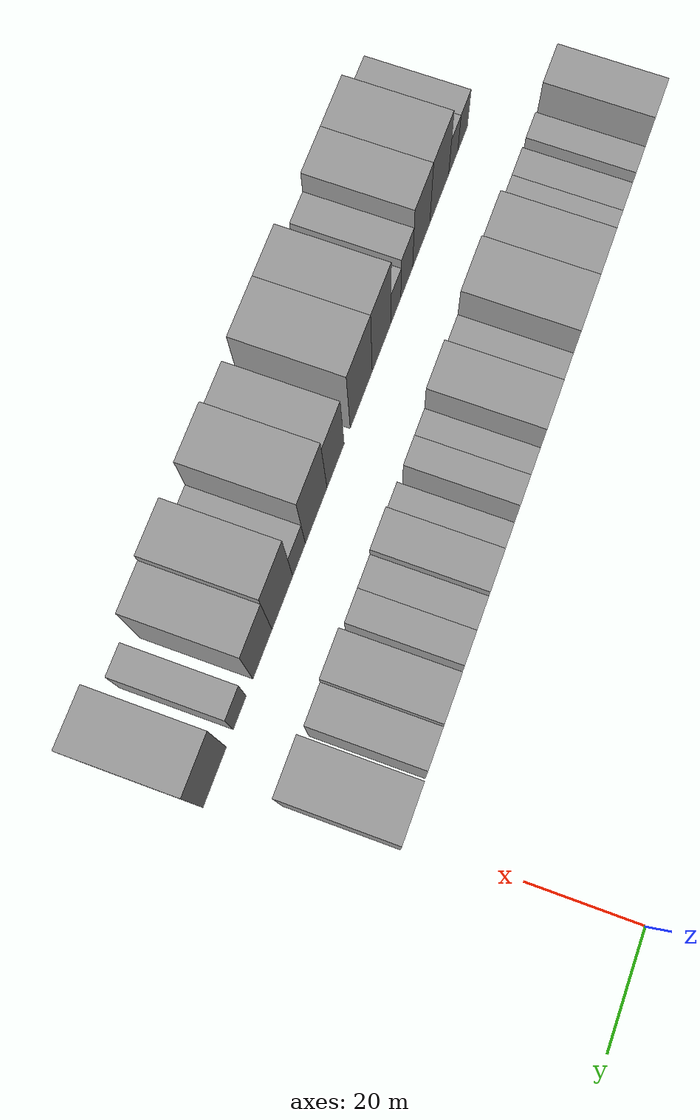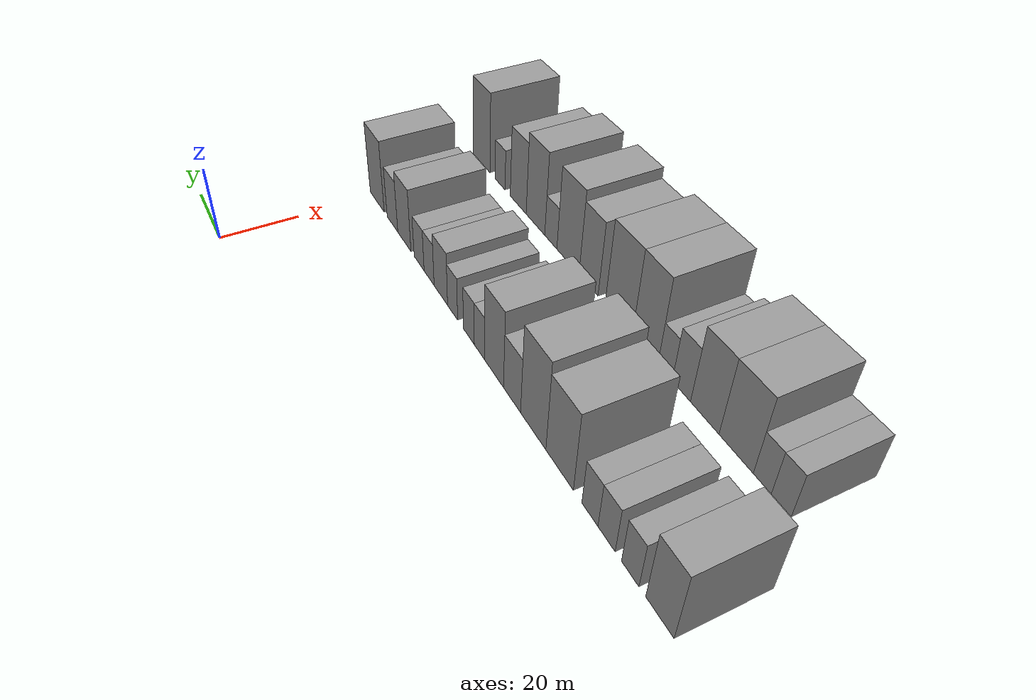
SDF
<sdf version="1.6">
 <world name="default">
  <model name="building_18">
   <static>1</static>
   <pose>50.0000 -129.6286 0 0.000000 0.000000 0.000000</pose>
   <link name="link">
    <pose>0 0 9.00 0 0 0</pose>
    <collision name="collision"><geometry><box><size>20.0000 8.0599 18.0000</size></box></geometry></collision>
    <visual name="visual">
     <cast_shadows>0</cast_shadows>
     <geometry><box><size>20.0000 8.0599 18.0000</size></box></geometry>
     <material>
      <script>
       <uri>model://grey_wall/materials/scripts</uri>
       <uri>model://grey_wall/materials/textures</uri>
       <name>vrc/grey_wall</name>
      </script>
     </material>
    </visual>
   </link>
  </model>
  <model name="building_19">
   <static>1</static>
   <pose>50.0000 -120.9239 0 0.000000 0.000000 0.000000</pose>
   <link name="link">
    <pose>0 0 6.00 0 0 0</pose>
    <collision name="collision"><geometry><box><size>20.0000 5.3495 12.0000</size></box></geometry></collision>
    <visual name="visual">
     <cast_shadows>0</cast_shadows>
     <geometry><box><size>20.0000 5.3495 12.0000</size></box></geometry>
     <material>
      <script>
       <uri>model://grey_wall/materials/scripts</uri>
       <uri>model://grey_wall/materials/textures</uri>
       <name>vrc/grey_wall</name>
      </script>
     </material>
    </visual>
   </link>
  </model>
  <model name="building_20">
   <static>1</static>
   <pose>50.0000 -113.4339 0 0.000000 0.000000 0.000000</pose>
   <link name="link">
    <pose>0 0 6.00 0 0 0</pose>
    <collision name="collision"><geometry><box><size>20.0000 5.6305 12.0000</size></box></geometry></collision>
    <visual name="visual">
     <cast_shadows>0</cast_shadows>
     <geometry><box><size>20.0000 5.6305 12.0000</size></box></geometry>
     <material>
      <script>
       <uri>model://grey_wall/materials/scripts</uri>
       <uri>model://grey_wall/materials/textures</uri>
       <name>vrc/grey_wall</name>
      </script>
     </material>
    </visual>
   </link>
  </model>
  <model name="building_21">
   <static>1</static>
   <pose>50.0000 -107.8615 0 0.000000 0.000000 0.000000</pose>
   <link name="link">
    <pose>0 0 6.00 0 0 0</pose>
    <collision name="collision"><geometry><box><size>20.0000 5.5142 12.0000</size></box></geometry></collision>
    <visual name="visual">
     <cast_shadows>0</cast_shadows>
     <geometry><box><size>20.0000 5.5142 12.0000</size></box></geometry>
     <material>
      <script>
       <uri>model://grey_wall/materials/scripts</uri>
       <uri>model://grey_wall/materials/textures</uri>
       <name>vrc/grey_wall</name>
      </script>
     </material>
    </visual>
   </link>
  </model>
  <model name="building_22">
   <static>1</static>
   <pose>50.0000 -96.9569 0 0.000000 0.000000 0.000000</pose>
   <link name="link">
    <pose>0 0 10.50 0 0 0</pose>
    <collision name="collision"><geometry><box><size>20.0000 10.2951 21.0000</size></box></geometry></collision>
    <visual name="visual">
     <cast_shadows>0</cast_shadows>
     <geometry><box><size>20.0000 10.2951 21.0000</size></box></geometry>
     <material>
      <script>
       <uri>model://grey_wall/materials/scripts</uri>
       <uri>model://grey_wall/materials/textures</uri>
       <name>vrc/grey_wall</name>
      </script>
     </material>
    </visual>
   </link>
  </model>
  <model name="building_23">
   <static>1</static>
   <pose>50.0000 -86.6608 0 0.000000 0.000000 0.000000</pose>
   <link name="link">
    <pose>0 0 12.00 0 0 0</pose>
    <collision name="collision"><geometry><box><size>20.0000 10.2970 24.0000</size></box></geometry></collision>
    <visual name="visual">
     <cast_shadows>0</cast_shadows>
     <geometry><box><size>20.0000 10.2970 24.0000</size></box></geometry>
     <material>
      <script>
       <uri>model://grey_wall/materials/scripts</uri>
       <uri>model://grey_wall/materials/textures</uri>
       <name>vrc/grey_wall</name>
      </script>
     </material>
    </visual>
   </link>
  </model>
  <model name="building_24">
   <static>1</static>
   <pose>50.0000 -77.8001 0 0.000000 0.000000 0.000000</pose>
   <link name="link">
    <pose>0 0 7.50 0 0 0</pose>
    <collision name="collision"><geometry><box><size>20.0000 7.4245 15.0000</size></box></geometry></collision>
    <visual name="visual">
     <cast_shadows>0</cast_shadows>
     <geometry><box><size>20.0000 7.4245 15.0000</size></box></geometry>
     <material>
      <script>
       <uri>model://grey_wall/materials/scripts</uri>
       <uri>model://grey_wall/materials/textures</uri>
       <name>vrc/grey_wall</name>
      </script>
     </material>
    </visual>
   </link>
  </model>
  <model name="building_25">
   <static>1</static>
   <pose>50.0000 -69.6956 0 0.000000 0.000000 0.000000</pose>
   <link name="link">
    <pose>0 0 10.50 0 0 0</pose>
    <collision name="collision"><geometry><box><size>20.0000 8.7845 21.0000</size></box></geometry></collision>
    <visual name="visual">
     <cast_shadows>0</cast_shadows>
     <geometry><box><size>20.0000 8.7845 21.0000</size></box></geometry>
     <material>
      <script>
       <uri>model://grey_wall/materials/scripts</uri>
       <uri>model://grey_wall/materials/textures</uri>
       <name>vrc/grey_wall</name>
      </script>
     </material>
    </visual>
   </link>
  </model>
  <model name="building_26">
   <static>1</static>
   <pose>50.0000 -62.8585 0 0.000000 0.000000 0.000000</pose>
   <link name="link">
    <pose>0 0 6.00 0 0 0</pose>
    <collision name="collision"><geometry><box><size>20.0000 4.8897 12.0000</size></box></geometry></collision>
    <visual name="visual">
     <cast_shadows>0</cast_shadows>
     <geometry><box><size>20.0000 4.8897 12.0000</size></box></geometry>
     <material>
      <script>
       <uri>model://grey_wall/materials/scripts</uri>
       <uri>model://grey_wall/materials/textures</uri>
       <name>vrc/grey_wall</name>
      </script>
     </material>
    </visual>
   </link>
  </model>
  <model name="building_27">
   <static>1</static>
   <pose>50.0000 -57.6630 0 0.000000 0.000000 0.000000</pose>
   <link name="link">
    <pose>0 0 6.00 0 0 0</pose>
    <collision name="collision"><geometry><box><size>20.0000 5.5013 12.0000</size></box></geometry></collision>
    <visual name="visual">
     <cast_shadows>0</cast_shadows>
     <geometry><box><size>20.0000 5.5013 12.0000</size></box></geometry>
     <material>
      <script>
       <uri>model://grey_wall/materials/scripts</uri>
       <uri>model://grey_wall/materials/textures</uri>
       <name>vrc/grey_wall</name>
      </script>
     </material>
    </visual>
   </link>
  </model>
  <model name="building_28">
   <static>1</static>
   <pose>50.0000 -49.2499 0 0.000000 0.000000 0.000000</pose>
   <link name="link">
    <pose>0 0 6.00 0 0 0</pose>
    <collision name="collision"><geometry><box><size>20.0000 5.3249 12.0000</size></box></geometry></collision>
    <visual name="visual">
     <cast_shadows>0</cast_shadows>
     <geometry><box><size>20.0000 5.3249 12.0000</size></box></geometry>
     <material>
      <script>
       <uri>model://grey_wall/materials/scripts</uri>
       <uri>model://grey_wall/materials/textures</uri>
       <name>vrc/grey_wall</name>
      </script>
     </material>
    </visual>
   </link>
  </model>
  <model name="building_29">
   <static>1</static>
   <pose>50.0000 -42.8600 0 0.000000 0.000000 0.000000</pose>
   <link name="link">
    <pose>0 0 7.50 0 0 0</pose>
    <collision name="collision"><geometry><box><size>20.0000 7.4549 15.0000</size></box></geometry></collision>
    <visual name="visual">
     <cast_shadows>0</cast_shadows>
     <geometry><box><size>20.0000 7.4549 15.0000</size></box></geometry>
     <material>
      <script>
       <uri>model://grey_wall/materials/scripts</uri>
       <uri>model://grey_wall/materials/textures</uri>
       <name>vrc/grey_wall</name>
      </script>
     </material>
    </visual>
   </link>
  </model>
  <model name="building_30">
   <static>1</static>
   <pose>50.0000 -36.2315 0 0.000000 0.000000 0.000000</pose>
   <link name="link">
    <pose>0 0 6.00 0 0 0</pose>
    <collision name="collision"><geometry><box><size>20.0000 5.8020 12.0000</size></box></geometry></collision>
    <visual name="visual">
     <cast_shadows>0</cast_shadows>
     <geometry><box><size>20.0000 5.8020 12.0000</size></box></geometry>
     <material>
      <script>
       <uri>model://grey_wall/materials/scripts</uri>
       <uri>model://grey_wall/materials/textures</uri>
       <name>vrc/grey_wall</name>
      </script>
     </material>
    </visual>
   </link>
  </model>
  <model name="building_31">
   <static>1</static>
   <pose>50.0000 -30.3427 0 0.000000 0.000000 0.000000</pose>
   <link name="link">
    <pose>0 0 6.00 0 0 0</pose>
    <collision name="collision"><geometry><box><size>20.0000 5.9757 12.0000</size></box></geometry></collision>
    <visual name="visual">
     <cast_shadows>0</cast_shadows>
     <geometry><box><size>20.0000 5.9757 12.0000</size></box></geometry>
     <material>
      <script>
       <uri>model://grey_wall/materials/scripts</uri>
       <uri>model://grey_wall/materials/textures</uri>
       <name>vrc/grey_wall</name>
      </script>
     </material>
    </visual>
   </link>
  </model>
  <model name="building_32">
   <static>1</static>
   <pose>50.0000 -21.1666 0 0.000000 0.000000 0.000000</pose>
   <link name="link">
    <pose>0 0 9.00 0 0 0</pose>
    <collision name="collision"><geometry><box><size>20.0000 8.3766 18.0000</size></box></geometry></collision>
    <visual name="visual">
     <cast_shadows>0</cast_shadows>
     <geometry><box><size>20.0000 8.3766 18.0000</size></box></geometry>
     <material>
      <script>
       <uri>model://grey_wall/materials/scripts</uri>
       <uri>model://grey_wall/materials/textures</uri>
       <name>vrc/grey_wall</name>
      </script>
     </material>
    </visual>
   </link>
  </model>
  <model name="building_33">
   <static>1</static>
   <pose>50.0000 -13.4240 0 0.000000 0.000000 0.000000</pose>
   <link name="link">
    <pose>0 0 7.50 0 0 0</pose>
    <collision name="collision"><geometry><box><size>20.0000 7.1086 15.0000</size></box></geometry></collision>
    <visual name="visual">
     <cast_shadows>0</cast_shadows>
     <geometry><box><size>20.0000 7.1086 15.0000</size></box></geometry>
     <material>
      <script>
       <uri>model://grey_wall/materials/scripts</uri>
       <uri>model://grey_wall/materials/textures</uri>
       <name>vrc/grey_wall</name>
      </script>
     </material>
    </visual>
   </link>
  </model>
  <model name="building_34">
   <static>1</static>
   <pose>50.0000 -2.9296 0 0.000000 0.000000 0.000000</pose>
   <link name="link">
    <pose>0 0 10.50 0 0 0</pose>
    <collision name="collision"><geometry><box><size>20.0000 9.8801 21.0000</size></box></geometry></collision>
    <visual name="visual">
     <cast_shadows>0</cast_shadows>
     <geometry><box><size>20.0000 9.8801 21.0000</size></box></geometry>
     <material>
      <script>
       <uri>model://grey_wall/materials/scripts</uri>
       <uri>model://grey_wall/materials/textures</uri>
       <name>vrc/grey_wall</name>
      </script>
     </material>
    </visual>
   </link>
  </model>
  <model name="building_81">
   <static>1</static>
   <pose>82.0000 -121.2935 0 0.000000 0.000000 0.000000</pose>
   <link name="link">
    <pose>0 0 6.00 0 0 0</pose>
    <collision name="collision"><geometry><box><size>20.0000 5.4174 12.0000</size></box></geometry></collision>
    <visual name="visual">
     <cast_shadows>0</cast_shadows>
     <geometry><box><size>20.0000 5.4174 12.0000</size></box></geometry>
     <material>
      <script>
       <uri>model://grey_wall/materials/scripts</uri>
       <uri>model://grey_wall/materials/textures</uri>
       <name>vrc/grey_wall</name>
      </script>
     </material>
    </visual>
   </link>
  </model>
  <model name="building_82">
   <static>1</static>
   <pose>82.0000 -116.0348 0 0.000000 0.000000 0.000000</pose>
   <link name="link">
    <pose>0 0 6.00 0 0 0</pose>
    <collision name="collision"><geometry><box><size>20.0000 5.1000 12.0000</size></box></geometry></collision>
    <visual name="visual">
     <cast_shadows>0</cast_shadows>
     <geometry><box><size>20.0000 5.1000 12.0000</size></box></geometry>
     <material>
      <script>
       <uri>model://grey_wall/materials/scripts</uri>
       <uri>model://grey_wall/materials/textures</uri>
       <name>vrc/grey_wall</name>
      </script>
     </material>
    </visual>
   </link>
  </model>
  <model name="building_83">
   <static>1</static>
   <pose>82.0000 -108.3214 0 0.000000 0.000000 0.000000</pose>
   <link name="link">
    <pose>0 0 10.50 0 0 0</pose>
    <collision name="collision"><geometry><box><size>20.0000 10.3269 21.0000</size></box></geometry></collision>
    <visual name="visual">
     <cast_shadows>0</cast_shadows>
     <geometry><box><size>20.0000 10.3269 21.0000</size></box></geometry>
     <material>
      <script>
       <uri>model://grey_wall/materials/scripts</uri>
       <uri>model://grey_wall/materials/textures</uri>
       <name>vrc/grey_wall</name>
      </script>
     </material>
    </visual>
   </link>
  </model>
  <model name="building_84">
   <static>1</static>
   <pose>82.0000 -98.5267 0 0.000000 0.000000 0.000000</pose>
   <link name="link">
    <pose>0 0 10.50 0 0 0</pose>
    <collision name="collision"><geometry><box><size>20.0000 9.2625 21.0000</size></box></geometry></collision>
    <visual name="visual">
     <cast_shadows>0</cast_shadows>
     <geometry><box><size>20.0000 9.2625 21.0000</size></box></geometry>
     <material>
      <script>
       <uri>model://grey_wall/materials/scripts</uri>
       <uri>model://grey_wall/materials/textures</uri>
       <name>vrc/grey_wall</name>
      </script>
     </material>
    </visual>
   </link>
  </model>
  <model name="building_85">
   <static>1</static>
   <pose>82.0000 -90.7465 0 0.000000 0.000000 0.000000</pose>
   <link name="link">
    <pose>0 0 7.50 0 0 0</pose>
    <collision name="collision"><geometry><box><size>20.0000 6.2978 15.0000</size></box></geometry></collision>
    <visual name="visual">
     <cast_shadows>0</cast_shadows>
     <geometry><box><size>20.0000 6.2978 15.0000</size></box></geometry>
     <material>
      <script>
       <uri>model://grey_wall/materials/scripts</uri>
       <uri>model://grey_wall/materials/textures</uri>
       <name>vrc/grey_wall</name>
      </script>
     </material>
    </visual>
   </link>
  </model>
  <model name="building_86">
   <static>1</static>
   <pose>82.0000 -85.0205 0 0.000000 0.000000 0.000000</pose>
   <link name="link">
    <pose>0 0 6.00 0 0 0</pose>
    <collision name="collision"><geometry><box><size>20.0000 5.1543 12.0000</size></box></geometry></collision>
    <visual name="visual">
     <cast_shadows>0</cast_shadows>
     <geometry><box><size>20.0000 5.1543 12.0000</size></box></geometry>
     <material>
      <script>
       <uri>model://grey_wall/materials/scripts</uri>
       <uri>model://grey_wall/materials/textures</uri>
       <name>vrc/grey_wall</name>
      </script>
     </material>
    </visual>
   </link>
  </model>
  <model name="building_87">
   <static>1</static>
   <pose>82.0000 -77.6204 0 0.000000 0.000000 0.000000</pose>
   <link name="link">
    <pose>0 0 12.00 0 0 0</pose>
    <collision name="collision"><geometry><box><size>20.0000 9.6459 24.0000</size></box></geometry></collision>
    <visual name="visual">
     <cast_shadows>0</cast_shadows>
     <geometry><box><size>20.0000 9.6459 24.0000</size></box></geometry>
     <material>
      <script>
       <uri>model://grey_wall/materials/scripts</uri>
       <uri>model://grey_wall/materials/textures</uri>
       <name>vrc/grey_wall</name>
      </script>
     </material>
    </visual>
   </link>
  </model>
  <model name="building_88">
   <static>1</static>
   <pose>82.0000 -67.2510 0 0.000000 0.000000 0.000000</pose>
   <link name="link">
    <pose>0 0 12.00 0 0 0</pose>
    <collision name="collision"><geometry><box><size>20.0000 11.0929 24.0000</size></box></geometry></collision>
    <visual name="visual">
     <cast_shadows>0</cast_shadows>
     <geometry><box><size>20.0000 11.0929 24.0000</size></box></geometry>
     <material>
      <script>
       <uri>model://grey_wall/materials/scripts</uri>
       <uri>model://grey_wall/materials/textures</uri>
       <name>vrc/grey_wall</name>
      </script>
     </material>
    </visual>
   </link>
  </model>
  <model name="building_89">
   <static>1</static>
   <pose>82.0000 -54.4961 0 0.000000 0.000000 0.000000</pose>
   <link name="link">
    <pose>0 0 10.50 0 0 0</pose>
    <collision name="collision"><geometry><box><size>20.0000 8.4169 21.0000</size></box></geometry></collision>
    <visual name="visual">
     <cast_shadows>0</cast_shadows>
     <geometry><box><size>20.0000 8.4169 21.0000</size></box></geometry>
     <material>
      <script>
       <uri>model://grey_wall/materials/scripts</uri>
       <uri>model://grey_wall/materials/textures</uri>
       <name>vrc/grey_wall</name>
      </script>
     </material>
    </visual>
   </link>
  </model>
  <model name="building_90">
   <static>1</static>
   <pose>82.0000 -45.0684 0 0.000000 0.000000 0.000000</pose>
   <link name="link">
    <pose>0 0 12.00 0 0 0</pose>
    <collision name="collision"><geometry><box><size>20.0000 10.4384 24.0000</size></box></geometry></collision>
    <visual name="visual">
     <cast_shadows>0</cast_shadows>
     <geometry><box><size>20.0000 10.4384 24.0000</size></box></geometry>
     <material>
      <script>
       <uri>model://grey_wall/materials/scripts</uri>
       <uri>model://grey_wall/materials/textures</uri>
       <name>vrc/grey_wall</name>
      </script>
     </material>
    </visual>
   </link>
  </model>
  <model name="building_91">
   <static>1</static>
   <pose>82.0000 -36.8566 0 0.000000 0.000000 0.000000</pose>
   <link name="link">
    <pose>0 0 6.00 0 0 0</pose>
    <collision name="collision"><geometry><box><size>20.0000 5.9854 12.0000</size></box></geometry></collision>
    <visual name="visual">
     <cast_shadows>0</cast_shadows>
     <geometry><box><size>20.0000 5.9854 12.0000</size></box></geometry>
     <material>
      <script>
       <uri>model://grey_wall/materials/scripts</uri>
       <uri>model://grey_wall/materials/textures</uri>
       <name>vrc/grey_wall</name>
      </script>
     </material>
    </visual>
   </link>
  </model>
  <model name="building_92">
   <static>1</static>
   <pose>82.0000 -29.0393 0 0.000000 0.000000 0.000000</pose>
   <link name="link">
    <pose>0 0 12.00 0 0 0</pose>
    <collision name="collision"><geometry><box><size>20.0000 9.6492 24.0000</size></box></geometry></collision>
    <visual name="visual">
     <cast_shadows>0</cast_shadows>
     <geometry><box><size>20.0000 9.6492 24.0000</size></box></geometry>
     <material>
      <script>
       <uri>model://grey_wall/materials/scripts</uri>
       <uri>model://grey_wall/materials/textures</uri>
       <name>vrc/grey_wall</name>
      </script>
     </material>
    </visual>
   </link>
  </model>
  <model name="building_93">
   <static>1</static>
   <pose>82.0000 -19.8543 0 0.000000 0.000000 0.000000</pose>
   <link name="link">
    <pose>0 0 10.50 0 0 0</pose>
    <collision name="collision"><geometry><box><size>20.0000 8.7208 21.0000</size></box></geometry></collision>
    <visual name="visual">
     <cast_shadows>0</cast_shadows>
     <geometry><box><size>20.0000 8.7208 21.0000</size></box></geometry>
     <material>
      <script>
       <uri>model://grey_wall/materials/scripts</uri>
       <uri>model://grey_wall/materials/textures</uri>
       <name>vrc/grey_wall</name>
      </script>
     </material>
    </visual>
   </link>
  </model>
  <model name="building_94">
   <static>1</static>
   <pose>82.0000 -9.5935 0 0.000000 0.000000 0.000000</pose>
   <link name="link">
    <pose>0 0 6.00 0 0 0</pose>
    <collision name="collision"><geometry><box><size>20.0000 5.8008 12.0000</size></box></geometry></collision>
    <visual name="visual">
     <cast_shadows>0</cast_shadows>
     <geometry><box><size>20.0000 5.8008 12.0000</size></box></geometry>
     <material>
      <script>
       <uri>model://grey_wall/materials/scripts</uri>
       <uri>model://grey_wall/materials/textures</uri>
       <name>vrc/grey_wall</name>
      </script>
     </material>
    </visual>
   </link>
  </model>
  <model name="building_95">
   <static>1</static>
   <pose>82.0000 1.4205 0 0.000000 0.000000 0.000000</pose>
   <link name="link">
    <pose>0 0 12.00 0 0 0</pose>
    <collision name="collision"><geometry><box><size>20.0000 10.2270 24.0000</size></box></geometry></collision>
    <visual name="visual">
     <cast_shadows>0</cast_shadows>
     <geometry><box><size>20.0000 10.2270 24.0000</size></box></geometry>
     <material>
      <script>
       <uri>model://grey_wall/materials/scripts</uri>
       <uri>model://grey_wall/materials/textures</uri>
       <name>vrc/grey_wall</name>
      </script>
     </material>
    </visual>
   </link>
  </model>
 </world>
</sdf>
